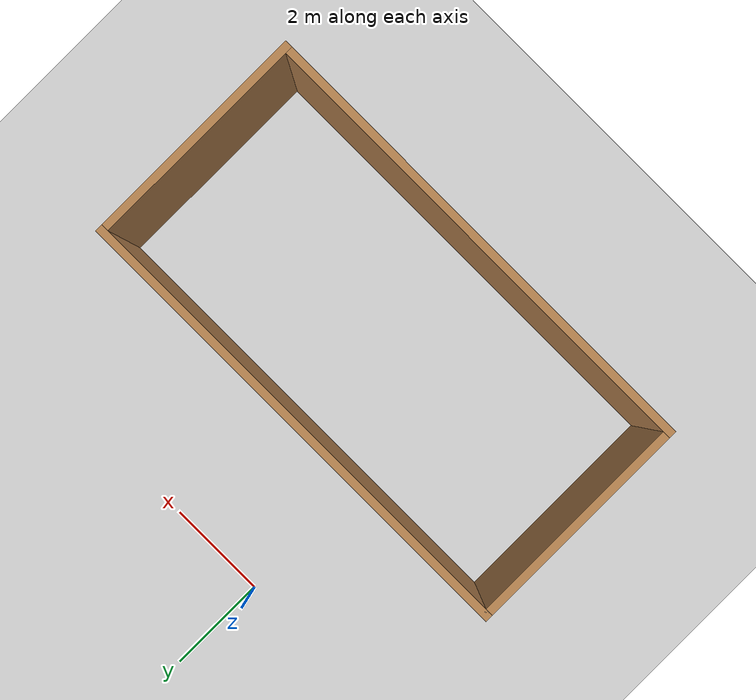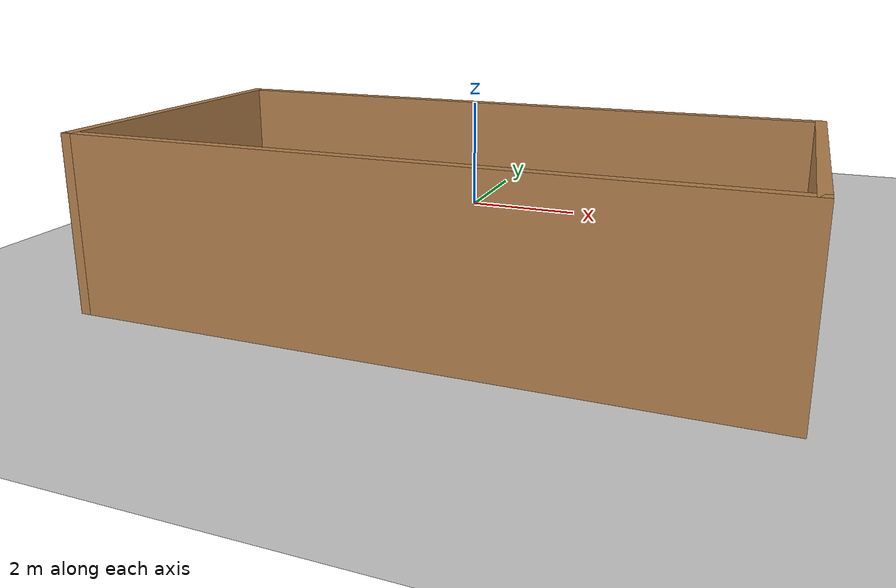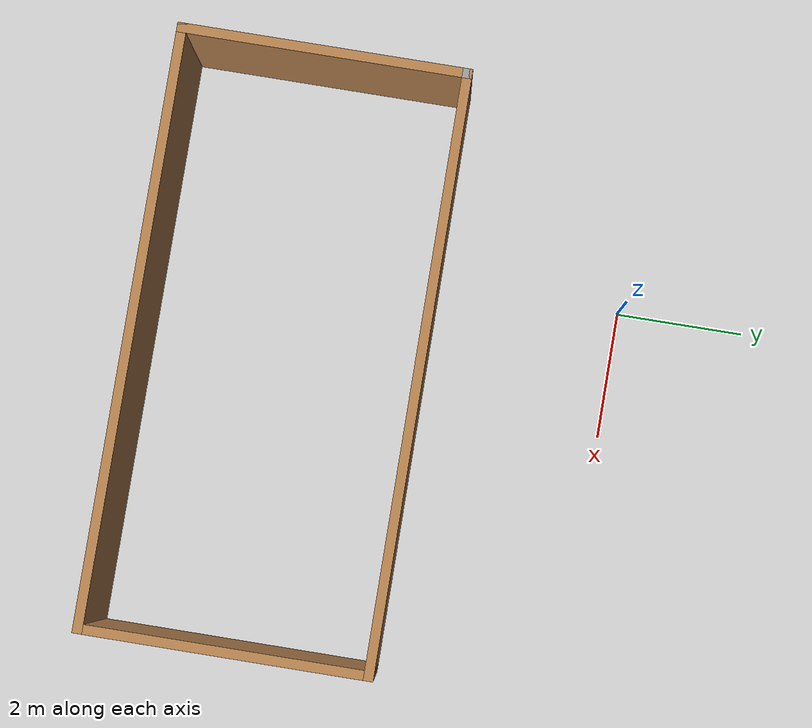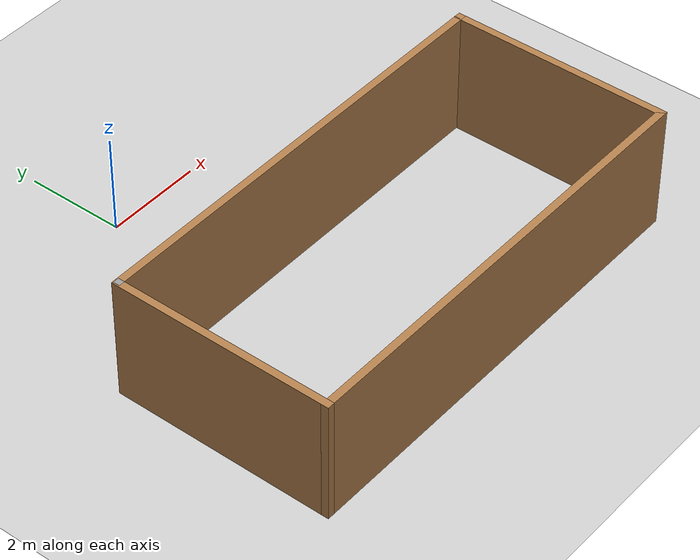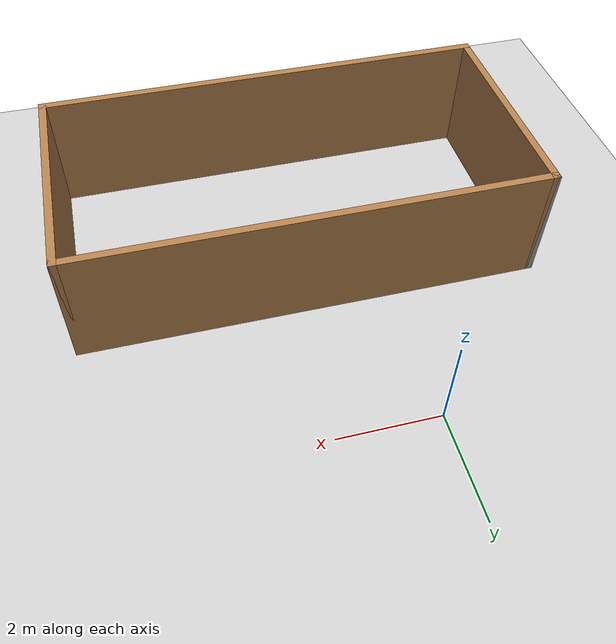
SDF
<sdf version="1.7">
 <world name="default">
  <scene><ambient>0.4 0.4 0.4 1</ambient><background>0.7 0.7 0.7 1</background><shadows>1</shadows></scene>
  <light name="sun" type="directional">
   <pose>0 0 10 0 -0 0</pose>
   <diffuse>0.8 0.8 0.8 1</diffuse>
   <specular>0.2 0.2 0.2 1</specular>
   <attenuation>
    <range>1000</range>
    <constant>0.9</constant>
    <linear>0.01</linear>
    <quadratic>0.001</quadratic>
   </attenuation>
   <direction>-0.5 0.1 -0.9</direction>
   <spot><inner_angle>0</inner_angle><outer_angle>0</outer_angle><falloff>0</falloff></spot>
  </light>
  <model name="ground_plane">
   <static>1</static>
   <link name="link">
    <collision name="collision">
     <geometry><plane><normal>0 0 1</normal><size>100 100</size></plane></geometry>
     <surface>
      <contact><collide_bitmask>65535</collide_bitmask></contact>
      <friction><ode><mu>100</mu><mu2>50</mu2></ode></friction>
     </surface>
    </collision>
    <visual name="visual">
     <cast_shadows>0</cast_shadows>
     <geometry><plane><normal>0 0 1</normal><size>100 100</size></plane></geometry>
     <material>
      <script><uri>file://media/materials/scripts/gazebo.material</uri><name>Gazebo/Grey</name></script>
     </material>
    </visual>
   </link>
  </model>
  <physics type="ode">
   <real_time_update_rate>1000</real_time_update_rate>
   <max_step_size>0.001</max_step_size>
   <real_time_factor>1</real_time_factor>
   <ode>
    <solver>
     <type>quick</type>
     <iters>150</iters>
     <precon_iters>0</precon_iters>
     <sor>1.4</sor>
     <use_dynamic_moi_rescaling>1</use_dynamic_moi_rescaling>
    </solver>
    <constraints>
     <cfm>1e-05</cfm>
     <erp>0.2</erp>
     <contact_max_correcting_vel>2000</contact_max_correcting_vel>
     <contact_surface_layer>0.01</contact_surface_layer>
    </constraints>
   </ode>
  </physics>
  <gravity>0 0 -9.8</gravity>
  <magnetic_field>6e-06 2.3e-05 -4.2e-05</magnetic_field>
  <atmosphere type="adiabatic"/>
  <spherical_coordinates>
   <surface_model>EARTH_WGS84</surface_model>
   <latitude_deg>0</latitude_deg>
   <longitude_deg>0</longitude_deg>
   <elevation>0</elevation>
   <heading_deg>0</heading_deg>
  </spherical_coordinates>
  <model name="rectangular_wall">
   <pose>1.334 -5.10912 0 0 -0 0</pose>
   <link name="Wall_25">
    <collision name="Wall_25_Collision">
     <geometry><box><size>9.25 0.15 2.5</size></box></geometry>
     <pose>0 0 1.25 0 -0 0</pose>
    </collision>
    <visual name="Wall_25_Visual">
     <pose>0 0 1.25 0 -0 0</pose>
     <geometry><box><size>9.25 0.15 2.5</size></box></geometry>
     <material>
      <script><uri>file://media/materials/scripts/gazebo.material</uri><name>Gazebo/Wood</name></script>
      <ambient>1 1 1 1</ambient>
     </material>
     <meta><layer>0</layer></meta>
    </visual>
    <pose>0.25773 2.175 0 0 -0 0</pose>
   </link>
   <link name="Wall_26">
    <collision name="Wall_26_Collision">
     <geometry><box><size>4.5 0.15 2.5</size></box></geometry>
     <pose>0 0 1.25 0 -0 0</pose>
    </collision>
    <visual name="Wall_26_Visual">
     <pose>0 0 1.25 0 -0 0</pose>
     <geometry><box><size>4.5 0.15 2.5</size></box></geometry>
     <material>
      <script><uri>file://media/materials/scripts/gazebo.material</uri><name>Gazebo/Wood</name></script>
      <ambient>1 1 1 1</ambient>
     </material>
     <meta><layer>0</layer></meta>
    </visual>
    <pose>4.80773 0 0 0 -0 -1.5708</pose>
   </link>
   <link name="Wall_27">
    <collision name="Wall_27_Collision">
     <geometry><box><size>9.25 0.15 2.5</size></box></geometry>
     <pose>0 0 1.25 0 -0 0</pose>
    </collision>
    <visual name="Wall_27_Visual">
     <pose>0 0 1.25 0 -0 0</pose>
     <geometry><box><size>9.25 0.15 2.5</size></box></geometry>
     <material>
      <script><uri>file://media/materials/scripts/gazebo.material</uri><name>Gazebo/Wood</name></script>
      <ambient>1 1 1 1</ambient>
     </material>
     <meta><layer>0</layer></meta>
    </visual>
    <pose>0.25773 -2.175 0 0 -0 3.14159</pose>
   </link>
   <link name="Wall_28">
    <collision name="Wall_28_Collision">
     <geometry><box><size>4.5 0.15 2.5</size></box></geometry>
     <pose>0 0 1.25 0 -0 0</pose>
    </collision>
    <visual name="Wall_28_Visual">
     <pose>0 0 1.25 0 -0 0</pose>
     <geometry><box><size>4.5 0.15 2.5</size></box></geometry>
     <material>
      <script><uri>file://media/materials/scripts/gazebo.material</uri><name>Gazebo/Wood</name></script>
      <ambient>1 1 1 1</ambient>
     </material>
     <meta><layer>0</layer></meta>
    </visual>
    <pose>-4.29227 0 0 0 -0 1.5708</pose>
   </link>
   <link name="Wall_29">
    <collision name="Wall_29_Collision">
     <geometry><box><size>0.15 0.15 2.5</size></box></geometry>
     <pose>0 0 1.25 0 -0 0</pose>
    </collision>
    <visual name="Wall_29_Visual">
     <pose>0 0 1.25 0 -0 0</pose>
     <geometry><box><size>0.15 0.15 2.5</size></box></geometry>
     <material>
      <script><uri>file://media/materials/scripts/gazebo.material</uri><name>Gazebo/Grey</name></script>
      <ambient>1 1 1 1</ambient>
     </material>
     <meta><layer>0</layer></meta>
    </visual>
    <pose>-4.29227 2.175 0 0 -0 0</pose>
   </link>
   <static>1</static>
  </model>
 </world>
</sdf>
